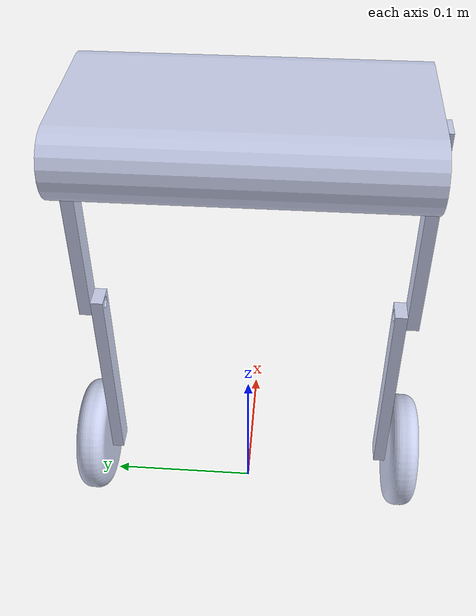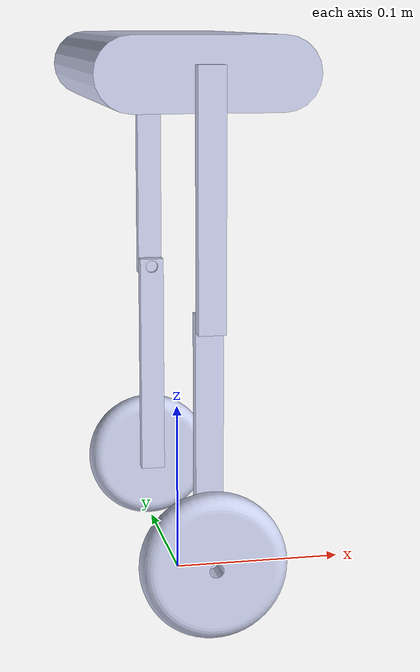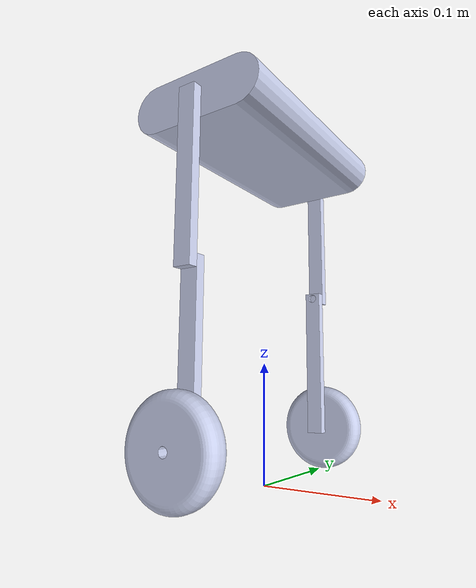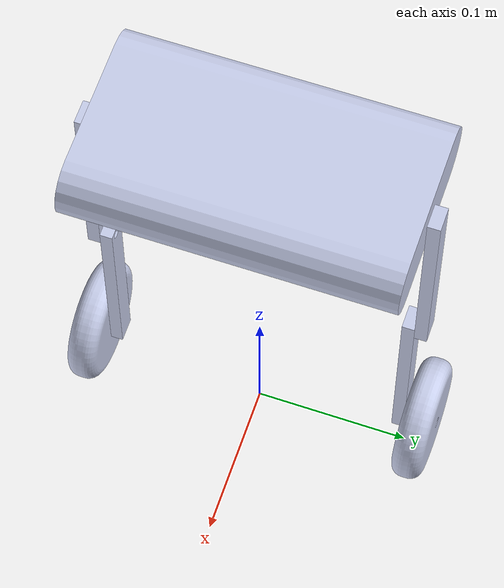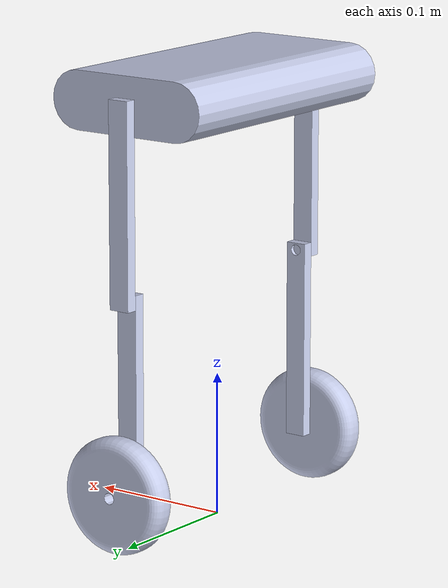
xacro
<?xml version="1.0" encoding="utf-8"?>
<robot

  name="wheel_leg" xmlns:xacro="http://www.ros.org/wiki/xacro">
  <!-- Import all Gazebo-customization elements, including Gazebo colors -->
  <xacro:include filename="$(find wheel_leg)/urdf/wheel_leg.gazebo" />

  <link name="base_footprint" />

  <joint name="joint_base_footprint_base_link" type="fixed">
  <origin
      xyz="0 0 0.3"
      rpy="0 0 0" />
    <parent link="base_footprint" />
    <child link="base_link" />
  </joint>

  <link
    name="base_link">
    <inertial>
      <origin
        xyz="-6.9389E-18 2.5278E-17 0"
        rpy="0 0 0" />
      <mass
        value="3.0" />
      <inertia
        ixx="0.0104"
        ixy="2.2956E-19"
        ixz="1.2678E-19"
        iyy="0.0035"
        iyz="-9.9634E-21"
        izz="0.0132" />
    </inertial>
    <visual>
      <origin
        xyz="0 0 0"
        rpy="0 0 0" />
      <geometry>
        <mesh
          filename="package://wheel_leg/meshes2/base_link.STL" />
      </geometry>
      <material
        name="">
        <color
          rgba="0.79216 0.81961 0.93333 1" />
      </material>
    </visual>
    <collision>
      <origin
        xyz="0 0 0"
        rpy="0 0 0" />
      <geometry>
        <box size="0.12 0.200 0.040"/>
      </geometry>
    </collision>
  </link>
  <!-- right -->
    <link
    name="link_right_hip">
    <inertial>
      <origin
        xyz="0 0 0"
        rpy="0 0 0" />
      <mass
        value="0.01" />
      <inertia
        ixx="1E-5"
        ixy="0.0"
        ixz="0.0"
        iyy="1E-5"
        iyz="0.0"
        izz="1E-5" />
    </inertial>
    <visual>
      <origin
        xyz="0 0 0"
        rpy="0 0 0" />
      <geometry>
        <sphere radius = "0.005"/>
      </geometry>
    </visual>
    <collision>
      <origin
        xyz="0 0 0"
        rpy="0 0 0" />
      <geometry>
        <sphere radius = "0.005"/>
      </geometry>
    </collision>
  </link>
  <joint
    name="joint_base_right_hip"
    type="revolute">
    <origin
      xyz="0 -0.1 0"
      rpy="1.5708 1.5708 0" />
    <parent
      link="base_link" />
    <child
      link="link_right_hip" />
    <axis
      xyz="0 1 0" />
    <limit
      lower="-0.524"
      upper="1.7"
      effort="100"
      velocity="25" />
    <dynamics damping="0.7" friction="1.0"/>
  </joint>
  <link
    name="link_right_leg1">
    <inertial>
      <origin
        xyz="0.065 6.0715E-18 0.0038112"
        rpy="0 0 0" />
      <mass
        value="0.017303" />
      <inertia
        ixx="4.2828E-07"
        ixy="7.91E-23"
        ixz="-5.6741E-22"
        iyy="2.9677E-05"
        iyz="1.7088E-22"
        izz="2.9883E-05" />
    </inertial>
    <visual>
      <origin
        xyz="0 0 0"
        rpy="0 0 0" />
      <geometry>
        <mesh
          filename="package://wheel_leg/meshes2/link_right_leg1.STL" />
      </geometry>
      <material
        name="">
        <color
          rgba="0.79216 0.81961 0.93333 1" />
      </material>
    </visual>
    <collision>
      <origin
        xyz="0.065 0.0 0.004"
        rpy="0 0 0" />
      <geometry>
        <box size="0.14 0.015 0.0080"/>
      </geometry>
    </collision>
  </link>
  <joint
    name="joint_right_hip_right_leg1"
    type="revolute">
    <origin
      xyz="0 0 0"
      rpy="0 0 0" />
    <parent
      link="link_right_hip" />
    <child
      link="link_right_leg1" />
    <axis
      xyz="0 0 1" />
    <limit
      lower="-1.7"
      upper="1.7"
      effort="100"
      velocity="25" />
    <dynamics damping="0.7" friction="1.0"/>
  </joint>
  <link
    name="link_right_knee">
    <inertial>
      <origin
        xyz="0 0 0"
        rpy="0 0 0" />
      <mass
        value="0.01" />
      <inertia
        ixx="1E-5"
        ixy="0.0"
        ixz="0.0"
        iyy="1E-5"
        iyz="0.0"
        izz="1E-5" />
    </inertial>
    <visual>
      <origin
        xyz="0 0 0"
        rpy="0 0 0" />
      <geometry>
        <sphere radius = "0.005"/>
      </geometry>
    </visual>
    <collision>
      <origin
        xyz="0 0 0"
        rpy="0 0 0" />
      <geometry>
        <sphere radius = "0.005"/>
      </geometry>
    </collision>
  </link>
  <joint
    name="joint_right_leg1_knee"
    type="revolute">
    <origin
      xyz="0.13 0 0"
      rpy="0 0 0" />
    <parent
      link="link_right_leg1" />
    <child
      link="link_right_knee" />
    <axis
      xyz="0 -1 0" />
    <limit
      lower="-1.7"
      upper="1.7"
      effort="100"
      velocity="25" />
    <dynamics damping="0.7" friction="1.0"/>
  </joint>
  <link
    name="link_right_leg2">
    <inertial>
      <origin
        xyz="0.067551 1.3878E-17 -0.0039019"
        rpy="0 0 0" />
      <mass
        value="0.016649" />
      <inertia
        ixx="4.1283E-07"
        ixy="-5.4594E-21"
        ixz="-1.0202E-07"
        iyy="2.6792E-05"
        iyz="7.6791E-23"
        izz="2.7008E-05" />
    </inertial>
    <visual>
      <origin
        xyz="0 0 0"
        rpy="0 0 0" />
      <geometry>
        <mesh
          filename="package://wheel_leg/meshes2/link_right_leg2.STL" />
      </geometry>
      <material
        name="">
        <color
          rgba="0.79216 0.81961 0.93333 1" />
      </material>
    </visual>
    <collision>
      <origin
        xyz="0.065 0.0 -0.004"
        rpy="0 0 0" />
      <geometry>
        <box size="0.14 0.015 0.0080"/>
      </geometry>
    </collision>
  </link>
  <joint
    name="joint_right_knee_leg2"
    type="revolute">
    <origin
      xyz="0.0 0 0"
      rpy="0 0 0" />
    <parent
      link="link_right_knee" />
    <child
      link="link_right_leg2" />
    <axis
      xyz="0 0 1" />
    <limit
      lower="-2.4"
      upper="2.4"
      effort="100"
      velocity="25" />
    <dynamics damping="0.7" friction="1.0"/>
  </joint>
  <link
    name="link_right_wheel">
    <inertial>
      <origin
        xyz="-1.7347E-18 0 0"
        rpy="0 0 0" />
      <mass
        value="0.09293" />
      <inertia
        ixx="3.8232E-05"
        ixy="-6.9397E-20"
        ixz="-4.8896E-23"
        iyy="7.0742E-05"
        iyz="4.4857E-20"
        izz="3.8232E-05" />
    </inertial>
    <visual>
      <origin
        xyz="0 0 0"
        rpy="0 0 0" />
      <geometry>
        <mesh
          filename="package://wheel_leg/meshes2/link_right_wheel.STL" />
      </geometry>
      <material
        name="">
        <color
          rgba="0.79216 0.81961 0.93333 1" />
      </material>
    </visual>
    <collision>
      <origin
        xyz="0 0 0"
        rpy="1.57 0 0" />
      <geometry>
        <cylinder length="0.02" radius="0.04"/>
      </geometry>
    </collision>
  </link>
  <joint
    name="joint_right_leg2_wheel"
    type="continuous">
    <origin
      xyz="0.13 0 0.01"
      rpy="-1.5708 0 1.5708" />
    <parent
      link="link_right_leg2" />
    <child
      link="link_right_wheel" />
    <axis
      xyz="0 1 0" />
    <dynamics damping="0.1" friction="0.0"/>
  </joint>
  <!-- left -->
  <link
    name="link_left_hip">
    <inertial>
      <origin
        xyz="0 0 0"
        rpy="0 0 0" />
      <mass
        value="0.01" />
      <inertia
        ixx="1E-5"
        ixy="0.0"
        ixz="0.0"
        iyy="1E-5"
        iyz="0.0"
        izz="1E-5" />
    </inertial>
    <visual>
      <origin
        xyz="0 0 0"
        rpy="0 0 0" />
      <geometry>
        <sphere radius = "0.005"/>
      </geometry>
    </visual>
    <collision>
      <origin
        xyz="0 0 0"
        rpy="0 0 0" />
      <geometry>
        <sphere radius = "0.005"/>
      </geometry>
    </collision>
  </link>
  <joint
    name="joint_base_left_hip"
    type="revolute">
    <origin
      xyz="0 0.1 0"
      rpy="1.5708 1.5708 0" />
    <parent
      link="base_link" />
    <child
      link="link_left_hip" />
    <axis
      xyz="0 1 0" />
    <limit
      lower="-0.524"
      upper="1.7"
      effort="100"
      velocity="25" />
    <dynamics damping="0.7" friction="1.0"/>
  </joint>
  <link
    name="link_left_leg1">
    <inertial>
      <origin
        xyz="0.065 3.4694E-18 -0.0038112"
        rpy="0 0 0" />
      <mass
        value="0.017303" />
      <inertia
        ixx="4.2828E-07"
        ixy="1.7366E-22"
        ixz="2.8691E-22"
        iyy="2.9677E-05"
        iyz="1.8607E-23"
        izz="2.9883E-05" />
    </inertial>
    <visual>
      <origin
        xyz="0 0 0"
        rpy="0 0 0" />
      <geometry>
        <mesh
          filename="package://wheel_leg/meshes2/link_left_leg1.STL" />
      </geometry>
      <material
        name="">
        <color
          rgba="0.79216 0.81961 0.93333 1" />
      </material>
    </visual>
    <collision>
      <origin
        xyz="0.065 0.0 -0.004"
        rpy="0 0 0" />
      <geometry>
        <box size="0.14 0.015 0.0080"/>
      </geometry>
    </collision>
  </link>
  <joint
    name="joint_left_hip_left_leg1"
    type="revolute">
    <origin
      xyz="0 0 0"
      rpy="0 0 0" />
    <parent
      link="link_left_hip" />
    <child
      link="link_left_leg1" />
    <axis
      xyz="0 0 1" />
    <limit
      lower="-1.7"
      upper="1.7"
      effort="100"
      velocity="25" />
    <dynamics damping="0.7" friction="1.0"/>
  </joint>
  <link
    name="link_left_knee">
    <inertial>
      <origin
        xyz="0 0 0"
        rpy="0 0 0" />
      <mass
        value="0.01" />
      <inertia
        ixx="1E-5"
        ixy="0.0"
        ixz="0.0"
        iyy="1E-5"
        iyz="0.0"
        izz="1E-5" />
    </inertial>
    <visual>
      <origin
        xyz="0 0 0"
        rpy="0 0 0" />
      <geometry>
        <sphere radius = "0.005"/>
      </geometry>
    </visual>
    <collision>
      <origin
        xyz="0 0 0"
        rpy="0 0 0" />
      <geometry>
        <sphere radius = "0.005"/>
      </geometry>
    </collision>
  </link>
  <joint
    name="joint_left_leg1_knee"
    type="revolute">
    <origin
      xyz="0.13 0 0"
      rpy="0 0 0" />
    <parent
      link="link_left_leg1" />
    <child
      link="link_left_knee" />
    <axis
      xyz="0 1 0" />
    <limit
      lower="-1.7"
      upper="1.7"
      effort="100"
      velocity="25" />
    <dynamics damping="0.7" friction="1.0"/>
  </joint>
  <link
    name="link_left_leg2">
    <inertial>
      <origin
        xyz="0.067551 -1.1276E-17 0.0039019"
        rpy="0 0 0" />
      <mass
        value="0.016649" />
      <inertia
        ixx="4.1283E-07"
        ixy="-2.4095E-22"
        ixz="1.0202E-07"
        iyy="2.6792E-05"
        iyz="-4.2458E-22"
        izz="2.7008E-05" />
    </inertial>
    <visual>
      <origin
        xyz="0 0 0"
        rpy="0 0 0" />
      <geometry>
        <mesh
          filename="package://wheel_leg/meshes2/link_left_leg2.STL" />
      </geometry>
      <material
        name="">
        <color
          rgba="0.79216 0.81961 0.93333 1" />
      </material>
    </visual>
    <collision>
      <origin
        xyz="0.065 0.0 0.004"
        rpy="0 0 0" />
      <geometry>
        <box size="0.14 0.015 0.0080"/>
      </geometry>
    </collision>
  </link>
  <joint
    name="joint_left_knee_leg2"
    type="revolute">
    <origin
      xyz="0.0 0 0"
      rpy="0 0 0" />
    <parent
      link="link_left_knee" />
    <child
      link="link_left_leg2" />
    <axis
      xyz="0 0 1" />
    <limit
      lower="-2.4"
      upper="2.4"
      effort="100"
      velocity="25" />
    <dynamics damping="0.7" friction="1.0"/>
  </joint>
  <link
    name="link_left_wheel">
    <inertial>
      <origin
        xyz="-8.6736E-19 0 0"
        rpy="0 0 0" />
      <mass
        value="0.09293" />
      <inertia
        ixx="3.8232E-05"
        ixy="-3.8909E-20"
        ixz="2.5573E-21"
        iyy="7.0742E-05"
        iyz="-5.4999E-21"
        izz="3.8232E-05" />
    </inertial>
    <visual>
      <origin
        xyz="0 0 0"
        rpy="0 0 0" />
      <geometry>
        <mesh
          filename="package://wheel_leg/meshes2/link_left_wheel.STL" />
      </geometry>
      <material
        name="">
        <color
          rgba="0.79216 0.81961 0.93333 1" />
      </material>
    </visual>
    <collision>
      <origin
        xyz="0 0 0"
        rpy="1.57 0 0" />
      <geometry>
        <cylinder length="0.02" radius="0.04"/>
      </geometry>
    </collision>
  </link>
  <joint
    name="joint_left_leg2_wheel"
    type="continuous">
    <origin
      xyz="0.13 0 -0.01"
      rpy="-1.5708 0 1.5708" />
    <parent
      link="link_left_leg2" />
    <child
      link="link_left_wheel" />
    <axis
      xyz="0 1 0" />
      <dynamics damping="0.1" friction="0.0"/>
  </joint>
  <link name="imu_link"/>
  <joint name="base_to_imu" type="fixed">
    <axis rpy="0 0 0" xyz="0 0 0"/>
    <parent link="base_link"/>
    <child link="imu_link"/>
    <origin rpy="0 0 0" xyz="0 0 0"/>
  </joint>

  <xacro:macro name="transmission_block" params="joint_name">
    <transmission name="trans1">
      <type>transmission_interface/SimpleTransmission</type>
      <joint name="${joint_name}">
        <hardwareInterface>hardware_interface/EffortJointInterface</hardwareInterface>
      </joint>
      <actuator name="motor1">
        <hardwareInterface>hardware_interface/EffortJointInterface</hardwareInterface>
        <mechanicalReduction>1</mechanicalReduction>
      </actuator>
    </transmission>
  </xacro:macro>

    <xacro:macro name="transmission_block2" params="joint_name">
    <transmission name="trans1">
      <type>transmission_interface/SimpleTransmission</type>
      <joint name="${joint_name}">
        <hardwareInterface>hardware_interface/EffortJointInterface</hardwareInterface>
      </joint>
      <actuator name="motor1">
        <hardwareInterface>hardware_interface/EffortJointInterface</hardwareInterface>
        <mechanicalReduction>100</mechanicalReduction>
      </actuator>
    </transmission>
  </xacro:macro>

  <xacro:transmission_block2 joint_name="joint_base_right_hip"/>
  <xacro:transmission_block2 joint_name="joint_right_hip_right_leg1"/>
  <xacro:transmission_block2 joint_name="joint_base_left_hip"/>
  <xacro:transmission_block2 joint_name="joint_left_hip_left_leg1"/>
  <xacro:transmission_block2 joint_name="joint_right_leg1_knee"/>
  <xacro:transmission_block2 joint_name="joint_right_knee_leg2"/>
  <xacro:transmission_block2 joint_name="joint_left_leg1_knee"/>
  <xacro:transmission_block2 joint_name="joint_left_knee_leg2"/>
  <xacro:transmission_block2 joint_name="joint_left_leg2_wheel"/>
  <xacro:transmission_block joint_name="joint_right_leg2_wheel"/>
</robot>
